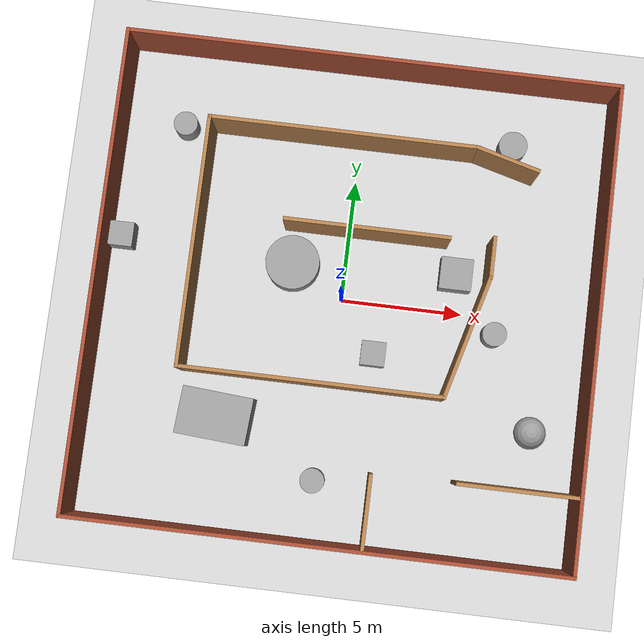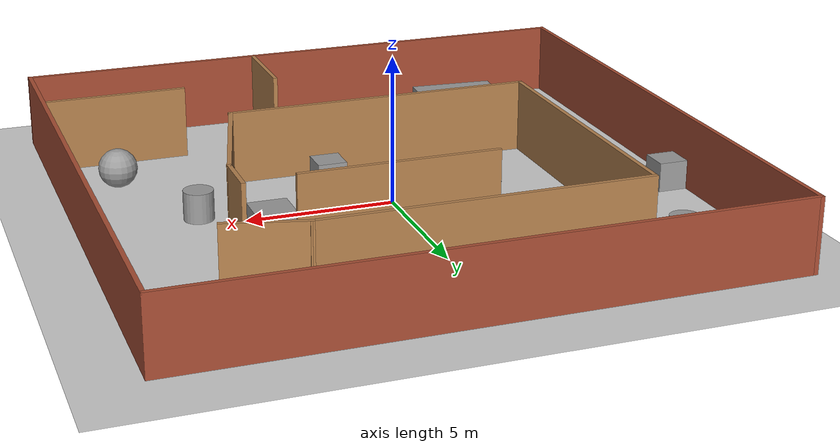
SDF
<sdf version="1.7">
 <world name="default">
  <light name="sun" type="directional">
   <pose>0 0 10 0 -0 0</pose>
   <diffuse>0.8 0.8 0.8 1</diffuse>
   <specular>0.2 0.2 0.2 1</specular>
   <attenuation>
    <range>1000</range>
    <constant>0.9</constant>
    <linear>0.01</linear>
    <quadratic>0.001</quadratic>
   </attenuation>
   <direction>-0.5 0.1 -0.9</direction>
   <spot><inner_angle>0</inner_angle><outer_angle>0</outer_angle><falloff>0</falloff></spot>
  </light>
  <model name="ground_plane">
   <static>1</static>
   <link name="link">
    <collision name="collision">
     <geometry><plane><normal>0 0 1</normal><size>100 100</size></plane></geometry>
     <surface>
      <contact><collide_bitmask>65535</collide_bitmask></contact>
      <friction><ode><mu>100</mu><mu2>50</mu2></ode></friction>
     </surface>
    </collision>
    <visual name="visual">
     <cast_shadows>0</cast_shadows>
     <geometry><plane><normal>0 0 1</normal><size>100 100</size></plane></geometry>
     <material>
      <script><uri>file://media/materials/scripts/gazebo.material</uri><name>Gazebo/Grey</name></script>
     </material>
    </visual>
   </link>
  </model>
  <gravity>0 0 -9.8</gravity>
  <magnetic_field>6e-06 2.3e-05 -4.2e-05</magnetic_field>
  <atmosphere type="adiabatic"/>
  <physics type="ode">
   <max_step_size>0.001</max_step_size>
   <real_time_factor>1</real_time_factor>
   <real_time_update_rate>1000</real_time_update_rate>
  </physics>
  <scene><ambient>0.4 0.4 0.4 1</ambient><background>0.7 0.7 0.7 1</background><shadows>1</shadows></scene>
  <spherical_coordinates>
   <surface_model>EARTH_WGS84</surface_model>
   <latitude_deg>0</latitude_deg>
   <longitude_deg>0</longitude_deg>
   <elevation>0</elevation>
   <heading_deg>0</heading_deg>
  </spherical_coordinates>
  <model name="walls">
   <pose>0.19603 -0.092262 0 0 -0 0</pose>
   <link name="Wall_12">
    <collision name="Wall_12_Collision">
     <geometry><box><size>19.75 0.15 2.5</size></box></geometry>
     <pose>0 0 1.25 0 -0 0</pose>
    </collision>
    <visual name="Wall_12_Visual">
     <pose>0 0 1.25 0 -0 0</pose>
     <geometry><box><size>19.75 0.15 2.5</size></box></geometry>
     <material>
      <script><uri>file://media/materials/scripts/gazebo.material</uri><name>Gazebo/Bricks</name></script>
      <ambient>1 1 1 1</ambient>
     </material>
     <meta><layer>0</layer></meta>
    </visual>
    <pose>-10.05 -0 0 0 -0 1.5708</pose>
   </link>
   <link name="Wall_13">
    <collision name="Wall_13_Collision">
     <geometry><box><size>20.25 0.15 2.5</size></box></geometry>
     <pose>0 0 1.25 0 -0 0</pose>
    </collision>
    <visual name="Wall_13_Visual">
     <pose>0 0 1.25 0 -0 0</pose>
     <geometry><box><size>20.25 0.15 2.5</size></box></geometry>
     <material>
      <script><uri>file://media/materials/scripts/gazebo.material</uri><name>Gazebo/Bricks</name></script>
      <ambient>1 1 1 1</ambient>
     </material>
     <meta><layer>0</layer></meta>
    </visual>
    <pose>-0 9.8 0 0 -0 0</pose>
   </link>
   <link name="Wall_14">
    <collision name="Wall_14_Collision">
     <geometry><box><size>19.75 0.15 2.5</size></box></geometry>
     <pose>0 0 1.25 0 -0 0</pose>
    </collision>
    <visual name="Wall_14_Visual">
     <pose>0 0 1.25 0 -0 0</pose>
     <geometry><box><size>19.75 0.15 2.5</size></box></geometry>
     <material>
      <script><uri>file://media/materials/scripts/gazebo.material</uri><name>Gazebo/Bricks</name></script>
      <ambient>1 1 1 1</ambient>
     </material>
     <meta><layer>0</layer></meta>
    </visual>
    <pose>10.05 -0 0 0 -0 -1.5708</pose>
   </link>
   <link name="Wall_15">
    <collision name="Wall_15_Collision">
     <geometry><box><size>20.25 0.15 2.5</size></box></geometry>
     <pose>0 0 1.25 0 -0 0</pose>
    </collision>
    <visual name="Wall_15_Visual">
     <pose>0 0 1.25 0 -0 0</pose>
     <geometry><box><size>20.25 0.15 2.5</size></box></geometry>
     <material>
      <script><uri>file://media/materials/scripts/gazebo.material</uri><name>Gazebo/Bricks</name></script>
      <ambient>1 1 1 1</ambient>
     </material>
     <meta><layer>0</layer></meta>
    </visual>
    <pose>-0 -9.8 0 0 -0 3.14159</pose>
   </link>
   <link name="Wall_18">
    <collision name="Wall_18_Collision">
     <geometry><box><size>10.25 0.15 2.5</size></box></geometry>
     <pose>0 0 1.25 0 -0 0</pose>
    </collision>
    <visual name="Wall_18_Visual">
     <pose>0 0 1.25 0 -0 0</pose>
     <geometry><box><size>10.25 0.15 2.5</size></box></geometry>
     <material>
      <script><uri>file://media/materials/scripts/gazebo.material</uri><name>Gazebo/Wood</name></script>
      <ambient>1 1 1 1</ambient>
     </material>
     <meta><layer>0</layer></meta>
    </visual>
    <pose>-6.30284 1.57273 0 0 -0 -1.5708</pose>
   </link>
   <link name="Wall_20">
    <collision name="Wall_20_Collision">
     <geometry><box><size>11 0.15 2.5</size></box></geometry>
     <pose>0 0 1.25 0 -0 0</pose>
    </collision>
    <visual name="Wall_20_Visual">
     <pose>0 0 1.25 0 -0 0</pose>
     <geometry><box><size>11 0.15 2.5</size></box></geometry>
     <material>
      <script><uri>file://media/materials/scripts/gazebo.material</uri><name>Gazebo/Wood</name></script>
      <ambient>1 1 1 1</ambient>
     </material>
     <meta><layer>0</layer></meta>
    </visual>
    <pose>-0.877842 6.62273 0 0 -0 0</pose>
   </link>
   <link name="Wall_21">
    <collision name="Wall_21_Collision">
     <geometry><box><size>2.75 0.15 2.5</size></box></geometry>
     <pose>0 0 1.25 0 -0 0</pose>
    </collision>
    <visual name="Wall_21_Visual">
     <pose>0 0 1.25 0 -0 0</pose>
     <geometry><box><size>2.75 0.15 2.5</size></box></geometry>
     <material>
      <script><uri>file://media/materials/scripts/gazebo.material</uri><name>Gazebo/Wood</name></script>
      <ambient>1 1 1 1</ambient>
     </material>
     <meta><layer>0</layer></meta>
    </visual>
    <pose>5.80286 6.28627 0 0 -0 -0.261799</pose>
   </link>
   <link name="Wall_24">
    <collision name="Wall_24_Collision">
     <geometry><box><size>4.84252 0.15 2.5</size></box></geometry>
     <pose>0 0 1.25 0 -0 0</pose>
    </collision>
    <visual name="Wall_24_Visual">
     <pose>0 0 1.25 0 -0 0</pose>
     <geometry><box><size>4.84252 0.15 2.5</size></box></geometry>
     <material>
      <script><uri>file://media/materials/scripts/gazebo.material</uri><name>Gazebo/Wood</name></script>
      <ambient>1 1 1 1</ambient>
     </material>
     <meta><layer>0</layer></meta>
    </visual>
    <pose>7.54232 -6.74676 0 0 -0 3.14159</pose>
   </link>
   <link name="Wall_28">
    <collision name="Wall_28_Collision">
     <geometry><box><size>3 0.15 2.5</size></box></geometry>
     <pose>0 0 1.25 0 -0 0</pose>
    </collision>
    <visual name="Wall_28_Visual">
     <pose>0 0 1.25 0 -0 0</pose>
     <geometry><box><size>3 0.15 2.5</size></box></geometry>
     <material>
      <script><uri>file://media/materials/scripts/gazebo.material</uri><name>Gazebo/Wood</name></script>
      <ambient>1 1 1 1</ambient>
     </material>
     <meta><layer>0</layer></meta>
    </visual>
    <pose>1.79287 -8.26428 0 0 -0 -1.5708</pose>
   </link>
   <link name="Wall_33">
    <collision name="Wall_33_Collision">
     <geometry><box><size>10.75 0.15 2.5</size></box></geometry>
     <pose>0 0 1.25 0 -0 0</pose>
    </collision>
    <visual name="Wall_33_Visual">
     <pose>0 0 1.25 0 -0 0</pose>
     <geometry><box><size>10.75 0.15 2.5</size></box></geometry>
     <material>
      <script><uri>file://media/materials/scripts/gazebo.material</uri><name>Gazebo/Wood</name></script>
      <ambient>1 1 1 1</ambient>
     </material>
     <meta><layer>0</layer></meta>
    </visual>
    <pose>-1.00284 -3.47727 0 0 -0 0</pose>
   </link>
   <link name="Wall_34">
    <collision name="Wall_34_Collision">
     <geometry><box><size>5.25 0.15 2.5</size></box></geometry>
     <pose>0 0 1.25 0 -0 0</pose>
    </collision>
    <visual name="Wall_34_Visual">
     <pose>0 0 1.25 0 -0 0</pose>
     <geometry><box><size>5.25 0.15 2.5</size></box></geometry>
     <material>
      <script><uri>file://media/materials/scripts/gazebo.material</uri><name>Gazebo/Wood</name></script>
      <ambient>1 1 1 1</ambient>
     </material>
     <meta><layer>0</layer></meta>
    </visual>
    <pose>4.95715 -1.01416 0 0 -0 1.309</pose>
   </link>
   <link name="Wall_37">
    <collision name="Wall_37_Collision">
     <geometry><box><size>1.75 0.15 2.5</size></box></geometry>
     <pose>0 0 1.25 0 -0 0</pose>
    </collision>
    <visual name="Wall_37_Visual">
     <pose>0 0 1.25 0 -0 0</pose>
     <geometry><box><size>1.75 0.15 2.5</size></box></geometry>
     <material>
      <script><uri>file://media/materials/scripts/gazebo.material</uri><name>Gazebo/Wood</name></script>
      <ambient>1 1 1 1</ambient>
     </material>
     <meta><layer>0</layer></meta>
    </visual>
    <pose>5.61714 2.24895 0 0 -0 1.5708</pose>
   </link>
   <link name="Wall_39">
    <collision name="Wall_39_Collision">
     <geometry><box><size>6.75 0.15 2.5</size></box></geometry>
     <pose>0 0 1.25 0 -0 0</pose>
    </collision>
    <visual name="Wall_39_Visual">
     <pose>0 0 1.25 0 -0 0</pose>
     <geometry><box><size>6.75 0.15 2.5</size></box></geometry>
     <material>
      <script><uri>file://media/materials/scripts/gazebo.material</uri><name>Gazebo/Wood</name></script>
      <ambient>1 1 1 1</ambient>
     </material>
     <meta><layer>0</layer></meta>
    </visual>
    <pose>0.516385 2.84728 0 0 -0 3.14159</pose>
   </link>
   <static>1</static>
  </model>
  <model name="unit_box">
   <pose>4.54272 1.55787 0.499995 -0 -8e-06 4.3e-05</pose>
   <link name="link">
    <inertial>
     <mass>1</mass>
     <inertia>
      <ixx>0.166667</ixx>
      <ixy>0</ixy>
      <ixz>0</ixz>
      <iyy>0.166667</iyy>
      <iyz>0</iyz>
      <izz>0.166667</izz>
     </inertia>
    </inertial>
    <collision name="collision"><geometry><box><size>1.31691 1.3201 1</size></box></geometry></collision>
    <visual name="visual">
     <geometry><box><size>1.31691 1.3201 1</size></box></geometry>
     <material>
      <script><name>Gazebo/Grey</name><uri>file://media/materials/scripts/gazebo.material</uri></script>
     </material>
    </visual>
   </link>
  </model>
  <model name="unit_cylinder">
   <pose>6.29503 7.13262 0.499997 -4e-06 2e-06 1e-06</pose>
   <link name="link">
    <inertial>
     <mass>1</mass>
     <inertia><ixx>0.145833</ixx><ixy>0</ixy><ixz>0</ixz><iyy>0.145833</iyy><iyz>0</iyz><izz>0.125</izz></inertia>
    </inertial>
    <collision name="collision">
     <geometry><cylinder><radius>0.59227</radius><length>1</length></cylinder></geometry>
    </collision>
    <visual name="visual">
     <geometry><cylinder><radius>0.59227</radius><length>1</length></cylinder></geometry>
     <material>
      <script><name>Gazebo/Grey</name><uri>file://media/materials/scripts/gazebo.material</uri></script>
     </material>
    </visual>
   </link>
  </model>
  <model name="unit_sphere">
   <pose>8.21655 -4.51934 0.65909 0 -0 0</pose>
   <link name="link">
    <inertial>
     <mass>1</mass>
     <inertia><ixx>0.1</ixx><ixy>0</ixy><ixz>0</ixz><iyy>0.1</iyy><iyz>0</iyz><izz>0.1</izz></inertia>
    </inertial>
    <collision name="collision"><geometry><sphere><radius>0.65909</radius></sphere></geometry></collision>
    <visual name="visual">
     <geometry><sphere><radius>0.65909</radius></sphere></geometry>
     <material>
      <script><name>Gazebo/Grey</name><uri>file://media/materials/scripts/gazebo.material</uri></script>
     </material>
    </visual>
   </link>
  </model>
  <model name="unit_cylinder_0">
   <pose>6.35325 -0.721322 0.499996 3e-06 1e-06 -0</pose>
   <link name="link">
    <inertial>
     <mass>1</mass>
     <inertia><ixx>0.145833</ixx><ixy>0</ixy><ixz>0</ixz><iyy>0.145833</iyy><iyz>0</iyz><izz>0.125</izz></inertia>
    </inertial>
    <collision name="collision">
     <geometry><cylinder><radius>0.5</radius><length>1</length></cylinder></geometry>
    </collision>
    <visual name="visual">
     <geometry><cylinder><radius>0.5</radius><length>1</length></cylinder></geometry>
     <material>
      <script><name>Gazebo/Grey</name><uri>file://media/materials/scripts/gazebo.material</uri></script>
     </material>
    </visual>
   </link>
  </model>
  <model name="unit_cylinder_1">
   <pose>-0.297713 -7.4414 0.499996 3e-06 1e-06 -0</pose>
   <link name="link">
    <inertial>
     <mass>1</mass>
     <inertia><ixx>0.145833</ixx><ixy>0</ixy><ixz>0</ixz><iyy>0.145833</iyy><iyz>0</iyz><izz>0.125</izz></inertia>
    </inertial>
    <collision name="collision">
     <geometry><cylinder><radius>0.5</radius><length>1</length></cylinder></geometry>
    </collision>
    <visual name="visual">
     <geometry><cylinder><radius>0.5</radius><length>1</length></cylinder></geometry>
     <material>
      <script><name>Gazebo/Grey</name><uri>file://media/materials/scripts/gazebo.material</uri></script>
     </material>
    </visual>
   </link>
  </model>
  <model name="unit_cylinder_2">
   <pose>-7.25196 6.47485 0.499997 4e-06 3e-06 -0</pose>
   <link name="link">
    <inertial>
     <mass>1</mass>
     <inertia><ixx>0.145833</ixx><ixy>0</ixy><ixz>0</ixz><iyy>0.145833</iyy><iyz>0</iyz><izz>0.125</izz></inertia>
    </inertial>
    <collision name="collision">
     <geometry><cylinder><radius>0.5</radius><length>1</length></cylinder></geometry>
    </collision>
    <visual name="visual">
     <geometry><cylinder><radius>0.5</radius><length>1</length></cylinder></geometry>
     <material>
      <script><name>Gazebo/Grey</name><uri>file://media/materials/scripts/gazebo.material</uri></script>
     </material>
    </visual>
   </link>
  </model>
  <model name="unit_box_0">
   <pose>-9.27895 1.59285 0.499995 -0 1e-05 1e-06</pose>
   <link name="link">
    <inertial>
     <mass>1</mass>
     <inertia>
      <ixx>0.166667</ixx>
      <ixy>0</ixy>
      <ixz>0</ixz>
      <iyy>0.166667</iyy>
      <iyz>0</iyz>
      <izz>0.166667</izz>
     </inertia>
    </inertial>
    <collision name="collision"><geometry><box><size>1 1 1</size></box></geometry></collision>
    <visual name="visual">
     <geometry><box><size>1 1 1</size></box></geometry>
     <material>
      <script><name>Gazebo/Grey</name><uri>file://media/materials/scripts/gazebo.material</uri></script>
     </material>
    </visual>
   </link>
  </model>
  <model name="unit_cylinder_3">
   <pose>-2.15809 1.24507 0.499992 7e-06 7e-06 -1.4e-05</pose>
   <link name="link">
    <inertial>
     <mass>1</mass>
     <inertia><ixx>0.145833</ixx><ixy>0</ixy><ixz>0</ixz><iyy>0.145833</iyy><iyz>0</iyz><izz>0.125</izz></inertia>
    </inertial>
    <collision name="collision">
     <geometry><cylinder><radius>1.10979</radius><length>1</length></cylinder></geometry>
    </collision>
    <visual name="visual">
     <geometry><cylinder><radius>1.10979</radius><length>1</length></cylinder></geometry>
     <material>
      <script><name>Gazebo/Grey</name><uri>file://media/materials/scripts/gazebo.material</uri></script>
     </material>
    </visual>
   </link>
  </model>
  <model name="unit_box_1">
   <pose>1.5437 -2.07932 0.499995 1e-05 -0 0</pose>
   <link name="link">
    <inertial>
     <mass>1</mass>
     <inertia>
      <ixx>0.166667</ixx>
      <ixy>0</ixy>
      <ixz>0</ixz>
      <iyy>0.166667</iyy>
      <iyz>0</iyz>
      <izz>0.166667</izz>
     </inertia>
    </inertial>
    <collision name="collision"><geometry><box><size>1 1 1</size></box></geometry></collision>
    <visual name="visual">
     <geometry><box><size>1 1 1</size></box></geometry>
     <material>
      <script><name>Gazebo/Grey</name><uri>file://media/materials/scripts/gazebo.material</uri></script>
     </material>
    </visual>
   </link>
  </model>
  <model name="unit_box_2">
   <pose>-4.45942 -5.33308 0.892131 4e-06 0 -0.075893</pose>
   <link name="link">
    <inertial>
     <mass>1</mass>
     <inertia>
      <ixx>0.166667</ixx>
      <ixy>0</ixy>
      <ixz>0</ixz>
      <iyy>0.166667</iyy>
      <iyz>0</iyz>
      <izz>0.166667</izz>
     </inertia>
    </inertial>
    <collision name="collision"><geometry><box><size>2.87138 1.90941 1.78427</size></box></geometry></collision>
    <visual name="visual">
     <geometry><box><size>2.87138 1.90941 1.78427</size></box></geometry>
     <material>
      <script><name>Gazebo/Grey</name><uri>file://media/materials/scripts/gazebo.material</uri></script>
     </material>
    </visual>
   </link>
  </model>
 </world>
</sdf>
